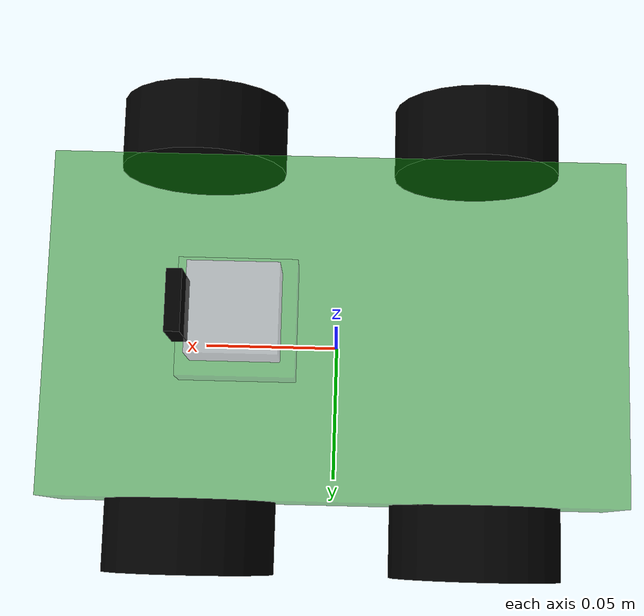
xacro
<?xml version="1.0"?>
<robot name="gojo_robot" xmlns:xacro="http://www.ros.org/wiki/xacro">

    <xacro:include filename="common_properties.xacro"/>
    <xacro:include filename="ultrasonic.xacro"/>
    <xacro:include filename="camera.xacro"/>
    <xacro:include filename="$(find my_robot)/description/ros_control/my_robot_control.xacro"/>

    <link name="base_footprint">
    </link>
    <link name="base_link">
        <visual>
            <geometry>
                <box size="${box_len} ${box_wid} ${box_hgt}" />
            </geometry>
            <origin xyz="0 0 0" rpy="0 0 0" />
            <material name="green" />
        </visual>
        <collision>
            <geometry>
                <box size="${box_len} ${box_wid} ${box_hgt}" />
            </geometry>
            <origin xyz="0 0 0" rpy="0 0 0" />
        </collision>
        <inertial>
            <mass value="${box_mass}" />
            <origin xyz="0.0 0.0 0.0" rpy="0 0 0" />
            <inertia ixx="${(1.0/12.0)*(box_len_sq + box_hgt_sq)}"
                     iyy="${(1.0/12.0)*(box_wid_sq + box_hgt_sq)}"
                     izz="${(1.0/12.0)*(box_wid_sq + box_len_sq)}"
                     ixy="0.0" ixz="0.0" iyz="0.0"
                     />
        </inertial>
    </link>

    <joint name="base_joint" type="fixed">
        <parent link="base_footprint" />
        <child link="base_link" />
        <origin xyz="0 0 0.03" rpy="0 0 0" />
    </joint>

    <link name="left_back_wheel_link">
        <visual>
            <geometry>
                <cylinder radius="${wheel_rad}" length="${wheel_wid}" />
            </geometry>
            <origin xyz="0 0 0" rpy="0 0 0" />
            <material name="black" />
        </visual>
        <collision>
            <geometry>
                <cylinder radius="${wheel_rad}" length="${wheel_wid}" />
            </geometry>
            <origin xyz="0 0 0" rpy="0 0 0" />
        </collision>
        <inertial>
            <mass value="${wheel_mass}"/>
            <origin xyz="0 0 0" rpy="0 0 0" />
            <inertia
                     ixx="${1./12. * wheel_mass * ((wheel_rad_sq * 3) + (wheel_wid_sq))}"
                     iyy="${1./12. * wheel_mass * ((wheel_rad_sq * 3) + (wheel_wid_sq))}"
                     izz="${1./12. * wheel_mass * (wheel_rad_sq)}"
                     ixy="0.0" ixz="0.0" iyz="0.0"
                     />
        </inertial>
    </link>
    <joint name="base_left_back_wheel_joint" type="continuous">
        <parent link="base_link" />
        <child link="left_front_wheel_link" />
        <origin xyz="${-box_len/4} ${-box_wid/2 -wheel_wid/2} 0" rpy="1.57 0 0" />
        <axis xyz="0 0 -1" />
        <limit effort="100" velocity="100"/>
        <dynamics damping="${bearing_damping}" friction="${bearing_friction}"/>
    </joint>

    <link name="right_back_wheel_link">
        <visual>
            <geometry>
                <cylinder radius="${wheel_rad}" length="${wheel_wid}" />
            </geometry>
            <origin xyz="0 0 0" rpy="0 0 0" />
            <material name="black" />
        </visual>
        <collision>
            <geometry>
                <cylinder radius="${wheel_rad}" length="${wheel_wid}" />
            </geometry>
            <origin xyz="0 0 0" rpy="0 0 0" />
        </collision>
        <inertial>
            <mass value="${wheel_mass}"/>
            <origin xyz="0 0 0" rpy="0 0 0" />
            <inertia
                     ixx="${1./12. * wheel_mass * ((wheel_rad_sq * 3) + (wheel_wid_sq))}"
                     iyy="${1./12. * wheel_mass * ((wheel_rad_sq * 3) + (wheel_wid_sq))}"
                     izz="${1./12. * wheel_mass * (wheel_rad_sq)}"
                     ixy="0.0" ixz="0.0" iyz="0.0"
                     />
        </inertial>
    </link>
    <joint name="base_right_back_wheel_joint" type="continuous">
        <parent link="base_link" />
        <child link="right_front_wheel_link" />
        <origin xyz="${-box_len/4} ${box_wid/2 + wheel_wid/2} 0" rpy="-1.57 0 0" />
        <axis xyz="0 0 1" />
        <limit effort="100" velocity="100"/>
        <dynamics damping="${bearing_damping}" friction="${bearing_friction}"/>
    </joint>

    <link name="left_front_wheel_link">
        <visual>
            <geometry>
                <cylinder radius="${wheel_rad}" length="${wheel_wid}" />
            </geometry>
            <origin xyz="0 0 0" rpy="0 0 0" />
            <material name="black" />
        </visual>
        <collision>
            <geometry>
                <cylinder radius="${wheel_rad}" length="${wheel_wid}" />
            </geometry>
            <origin xyz="0 0 0" rpy="0 0 0" />
        </collision>
        <inertial>
            <mass value="${wheel_mass}"/>
            <origin xyz="0 0 0" rpy="0 0 0" />
            <inertia
                     ixx="${1./12. * wheel_mass * ((wheel_rad_sq * 3) + (wheel_wid_sq))}"
                     iyy="${1./12. * wheel_mass * ((wheel_rad_sq * 3) + (wheel_wid_sq))}"
                     izz="${1./12. * wheel_mass * (wheel_rad_sq)}"
                     ixy="0.0" ixz="0.0" iyz="0.0"
                     />
        </inertial>
    </link>

    <joint name="base_left_front_wheel_joint" type="continuous">
        <parent link="base_link" />
        <child link="left_back_wheel_link" />
        <origin xyz="${box_len/4} ${-box_wid/2 -wheel_wid/2} 0" rpy="1.57 0 0" />
        <axis xyz="0 0 1" />
        <limit effort="100" velocity="100"/>
        <dynamics damping="${bearing_damping}" friction="${bearing_friction}"/>
    </joint>

    <link name="right_front_wheel_link">
        <visual>
            <geometry>
                <cylinder radius="${wheel_rad}" length="${wheel_wid}" />
            </geometry>
            <origin xyz="0 0 0" rpy="0 0 0" />
            <material name="black" />
        </visual>
        <collision>
            <geometry>
                <cylinder radius="${wheel_rad}" length="${wheel_wid}" />
            </geometry>
            <origin xyz="0 0 0" rpy="0 0 0" />
        </collision>
        <inertial>
            <mass value="${wheel_mass}"/>
            <origin xyz="0 0 0" rpy="0 0 0" />
            <inertia
                     ixx="${1./12. * wheel_mass * ((wheel_rad_sq * 3) + (wheel_wid_sq))}"
                     iyy="${1./12. * wheel_mass * ((wheel_rad_sq * 3) + (wheel_wid_sq))}"
                     izz="${1./12. * wheel_mass * (wheel_rad_sq)}"
                     ixy="0.0" ixz="0.0" iyz="0.0"
                     />
        </inertial>
    </link>
    <joint name="base_right_front_wheel_joint" type="continuous">
        <parent link="base_link" />
        <child link="right_back_wheel_link" />
        <origin xyz="${box_len/4} ${box_wid/2 + wheel_wid/2} 0" rpy="-1.57 0 0" />
        <axis xyz="0 0 1" />
        <limit effort="100" velocity="100"/>
        <dynamics damping="${bearing_damping}" friction="${bearing_friction}"/>
    </joint>

</robot>

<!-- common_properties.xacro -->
<robot xmlns:xacro="http://www.ros.org/wiki/xacro">

    <material name="green">
        <color rgba="0 0.5 0 0.5" />
    </material>
    <material name="grey">
        <color rgba="0.5 0.5 0.5 0.5" />
    </material>
    <material name="black">
        <color rgba="0 0 0 1" />
    </material>

    <xacro:property name="box_wid"
        value="0.12" />
    <xacro:property name="box_len"
        value="0.2" />
    <xacro:property name="box_hgt"
        value="0.045" />
    <xacro:property name="box_mass"
        value="1.0"  />
    <xacro:property name="wheel_rad"
        value="0.03"/>
    <xacro:property name="wheel_wid"
        value="0.025"/>
    <xacro:property name="wheel_mass"
        value="0.05" />

    <!-- Equipment Properties and limitations -->
    <xacro:property name="max_steer_angle"
        value="0.5"  />
    <xacro:property name="bearing_friction"
        value="0.1"/>
    <xacro:property name="bearing_damping"
        value="0.1"/>

    <!-- Nice to have values, all derived from above -->
    <xacro:property name="box_wid_sq"
        value="${box_wid* box_wid}"/>
    <xacro:property name="box_len_sq"
        value="${box_len * box_len}"/>
    <xacro:property name="box_hgt_sq"
        value="${box_hgt * box_hgt}"/>
    <xacro:property name="wheel_rad_sq"
        value="${wheel_rad * wheel_rad}"    />
    <xacro:property name="wheel_wid_sq"
        value="${wheel_wid * wheel_wid}"    />

</robot>

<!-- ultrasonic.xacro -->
<robot xmlns:xacro="http://www.ros.org/wiki/xacro">
    <link name="laser_frame">
        <visual>
            <geometry>
                <box size="0.04 0.04 0.025" />
            </geometry>
            <origin xyz="0 0 0" rpy="0 0 0" />
            <material name="green" />
        </visual>
        <collision>
            <geometry>
                <box size="0.04 0.04 0.025" />
            </geometry>
            <origin xyz="0 0 0" rpy="0 0 0" />
        </collision>
        <inertial>
            <mass value="0.01" />
            <origin xyz="0.0 0.0 0.0" rpy="0 0 0" />
            <inertia ixx="${(1.0/12.0)*((0.04 * 0.04) + (0.025 * 0.025))}"
                     iyy="${(1.0/12.0)*((0.04 * 0.04) + (0.025 * 0.025))}"
                     izz="${(1.0/12.0)*((0.04 * 0.04) + (0.04 * 0.04))}"
                     ixy="0.0" ixz="0.0" iyz="0.0"
                     />
        </inertial>
    </link>

    <joint name="base_laser_joint" type="fixed">
        <parent link="base_link" />
        <child link="laser_frame" />
        <origin xyz="${box_len/6.0} 0 ${box_hgt/2.0}" rpy="0 0 0" />
    </joint>
</robot>

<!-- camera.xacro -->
<robot xmlns:xacro="http://www.ros.org/wiki/xacro">
    <xacro:property name="stand_wid"
        value="0.03" />
    <xacro:property name="stand_len"
        value="0.03" />
    <xacro:property name="stand_hgt"
        value="0.06" />

    <xacro:property name="camera_wid"
        value="0.02" />
    <xacro:property name="camera_len"
        value="0.005" />
    <xacro:property name="camera_hgt"
        value="0.02" />

    <link name="camera_stand_link">
        <visual>
            <geometry>
                <box size="${stand_len} ${stand_wid} ${stand_hgt}" />
            </geometry>
            <origin xyz="0 0 0" rpy="0 0 0" />
            <material name="grey" />
        </visual>
        <collision>
            <geometry>
                <box size="${stand_len} ${stand_wid} ${stand_hgt}" />
            </geometry>
            <origin xyz="0 0 0" rpy="0 0 0" />
        </collision>
        <inertial>
            <mass value="0.02" />
            <origin xyz="0.0 0.0 0.0" rpy="0 0 0" />
            <inertia ixx="${(1.0/12.0)*((stand_len * stand_len) + (stand_hgt * stand_hgt))}"
                     iyy="${(1.0/12.0)*((stand_wid * stand_wid) + (stand_hgt * stand_hgt))}"
                     izz="${(1.0/12.0)*((stand_wid * stand_wid) + (stand_len * stand_len))}"
                     ixy="0.0" ixz="0.0" iyz="0.0"
                     />
        </inertial>
    </link>

    <joint name="base_camera_stand_joint" type="fixed">
        <parent link="base_link" />
        <child link="camera_stand_link" />
        <origin xyz="${box_len/6.0} 0 ${box_hgt/2.0}" rpy="0 0 0" />
    </joint>

    <link name="camera_link">
        <visual>
            <geometry>
                <box size="${camera_len} ${camera_wid} ${camera_hgt}" />
            </geometry>
            <origin xyz="${camera_len/2.0} 0 0" rpy="0 0 0" />
            <material name="black" />
        </visual>
        <collision>
            <geometry>
                <box size="${camera_len} ${camera_wid} ${camera_hgt}" />
            </geometry>
            <origin xyz="0 0 0" rpy="0 0 0" />
        </collision>
        <inertial>
            <mass value="0.001" />
            <origin xyz="0.0 0.0 0.0" rpy="0 0 0" />
            <inertia ixx="${(1.0/12.0)*((camera_len * camera_len) + (camera_hgt * camera_hgt))}"
                     iyy="${(1.0/12.0)*((camera_wid * camera_wid) + (camera_hgt * camera_hgt))}"
                     izz="${(1.0/12.0)*((camera_wid * camera_wid) + (camera_len * camera_len))}"
                     ixy="0.0" ixz="0.0" iyz="0.0"
                     />
        </inertial>
    </link>

    <joint name="camera_joint" type="fixed">
        <parent link="camera_stand_link" />
        <child link="camera_link" />
        <origin xyz="${stand_wid/2.0} 0 ${stand_hgt/2.0}" rpy="0 0 0" />
    </joint>

    <link name="camera_link_optical">
    </link>

    <joint name="camera_optical_joint" type="fixed">
        <parent link="camera_link" />
        <child link="camera_link_optical" />
        <origin xyz="0 0 0" rpy="${-pi/2} 0 ${-pi/2}" />
    </joint>

</robot>
